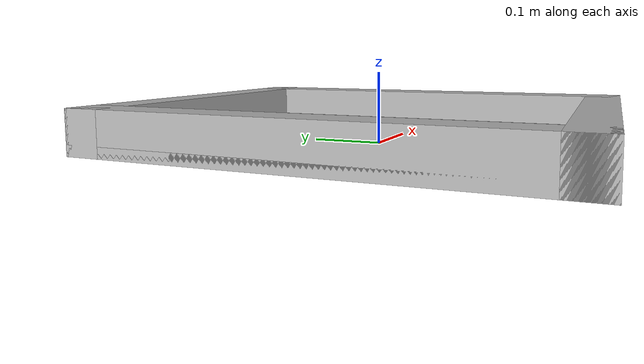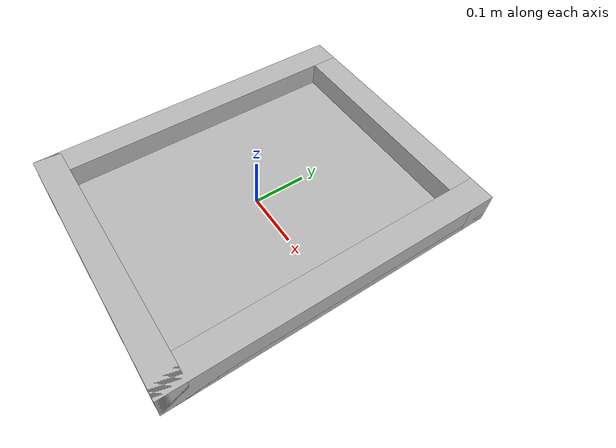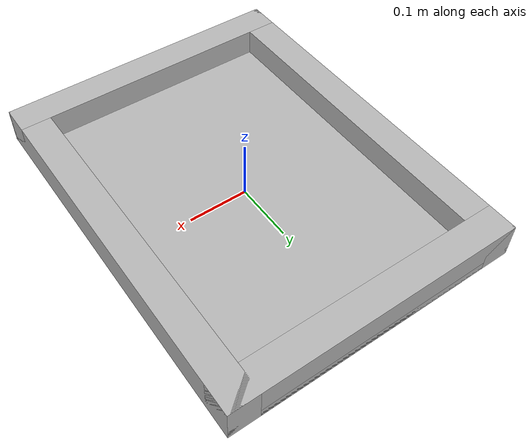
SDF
<?xml version="1.0"?>
<sdf version="1.7">
  <model name="bin_model">
    <!--
    Axes:
      +X - Pointing towards front (slope)
      +Y - Pointing to left side
      +Z - Up
    Origin:
      (0, 0, 0) at the center bottom of the bin
    -->
    <link name="extra_bin_base">
      <inertial>
        <mass>18.70</mass>
        <inertia>
          <ixx>0.79</ixx>
          <ixy>0</ixy>
          <ixz>0</ixz>
          <iyy>0.53</iyy>
          <iyz>0</iyz>
          <izz>1.2</izz>
        </inertia>
      </inertial>
      <visual name="visual">
        <pose>0.22 0 0.03000 0 0 0</pose>
        <geometry>
          <box>
            <size>0.05 0.63 0.06000</size>
          </box>
        </geometry>
      </visual>
      <collision name="front">
        <pose>0.22 0 0.03000 0 0 0</pose>
        <geometry>
          <box>
            <size>0.05 0.63 0.06000</size>
          </box>
        </geometry>
      </collision>
      <visual name="back">
        <pose>-0.22 0 0.03000 0 0 0</pose>
        <geometry>
          <box>
            <size>0.05 0.63 0.06000</size>
          </box>
        </geometry>
      </visual>
      <collision name="back">
        <pose>-0.22 0 0.03000 0 0 0</pose>
        <geometry>
          <box>
            <size>0.05 0.63 0.06000</size>
          </box>
        </geometry>
      </collision>
      <visual name="left">
        <pose>0 0.29 0.03000 0 0 0</pose>
        <geometry>
          <box>
            <size>0.49 0.05 0.06000</size>
          </box>
        </geometry>
      </visual>
      <collision name="left">
        <pose>0 0.29 0.03000 0 0 0</pose>
        <geometry>
          <box>
            <size>0.49 0.05 0.06000</size>
          </box>
        </geometry>
      </collision>
      <visual name="right">
        <pose>0 -0.29 0.03000 0 0 0</pose>
        <geometry>
          <box>
            <size>0.49 0.05 0.06000</size>
          </box>
        </geometry>
      </visual>
      <collision name="right">
        <pose>0 -0.29 0.03000 0 0 0</pose>
        <geometry>
          <box>
            <size>0.49 0.05 0.06000</size>
          </box>
        </geometry>
      </collision>
      <visual name="bottom">
        <pose>0.0 0.0 0.0075 0 0 0</pose>
        <geometry>
          <box>
            <size>0.49 0.63 0.015</size>
          </box>
        </geometry>
      </visual>
      <collision name="bottom">
        <pose>0.0 0.0 0.0075 0 0 0</pose>
        <geometry>
          <box>
            <size>0.49 0.63 0.015</size>
          </box>
        </geometry>
      </collision>
    </link>
    <frame name="bin_front_top_center">
      <pose relative_to="extra_bin_base">0.22 0 0.06000 0 0 0</pose>
    </frame>
  </model>
</sdf>
